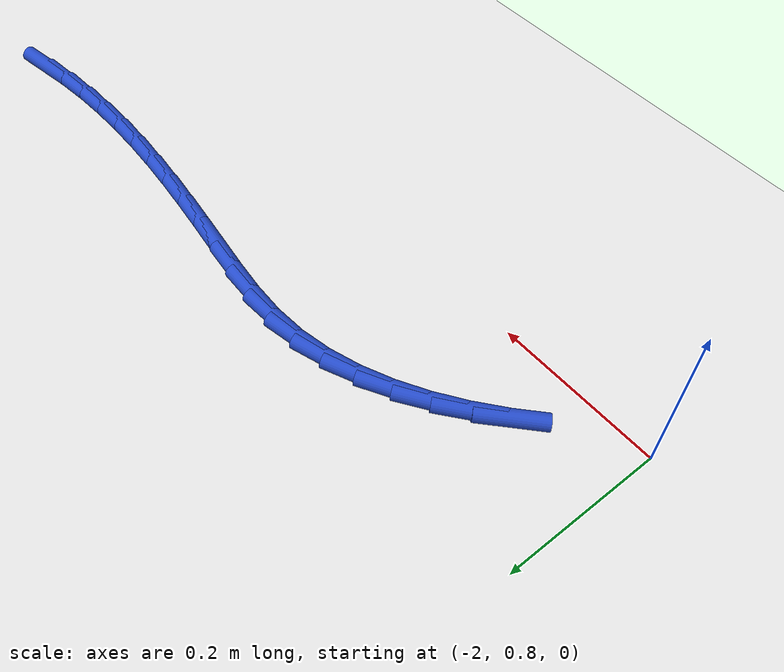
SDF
<sdf version="1.6">
 <world name="default">
  <model name="ground_plane">
   <static>1</static>
   <link name="link">
    <collision name="collision">
     <geometry><plane><normal>0 0 1</normal><size>100 100</size></plane></geometry>
     <surface><friction><ode><mu>100</mu><mu2>50</mu2></ode></friction></surface>
    </collision>
    <visual name="visual">
     <cast_shadows>0</cast_shadows>
     <geometry><plane><normal>0 0 1</normal><size>100 100</size></plane></geometry>
     <material>
      <script><uri>file://media/materials/scripts/gazebo.material</uri><name>Gazebo/WhiteGlow</name></script>
     </material>
    </visual>
   </link>
  </model>
  <model name="line">
   <link name="link_43">
    <pose>-1.098600895391843 0.976277046957294 0.01 0 1.57 0.17151627818310108</pose>
    <collision name="collision">
     <geometry><cylinder><radius>0.01</radius><length>0.08</length></cylinder></geometry>
    </collision>
    <visual name="visual">
     <material>
      <script><name>Gazebo/Blue</name><uri>file://media/materials/scripts/gazebo.material</uri></script>
     </material>
     <geometry><cylinder><radius>0.01</radius><length>0.08</length></cylinder></geometry>
    </visual>
   </link>
   <link name="link_44">
    <pose>-1.1395120227830668 0.9691904956550657 0.01 0 1.57 0.11648555332294579</pose>
    <collision name="collision">
     <geometry><cylinder><radius>0.01</radius><length>0.08</length></cylinder></geometry>
    </collision>
    <visual name="visual">
     <material>
      <script><name>Gazebo/Blue</name><uri>file://media/materials/scripts/gazebo.material</uri></script>
     </material>
     <geometry><cylinder><radius>0.01</radius><length>0.08</length></cylinder></geometry>
    </visual>
   </link>
   <link name="link_45">
    <pose>-1.1803309161928683 0.9644140610732937 0.01 0 1.57 0.06595374751297108</pose>
    <collision name="collision">
     <geometry><cylinder><radius>0.01</radius><length>0.08</length></cylinder></geometry>
    </collision>
    <visual name="visual">
     <material>
      <script><name>Gazebo/Blue</name><uri>file://media/materials/scripts/gazebo.material</uri></script>
     </material>
     <geometry><cylinder><radius>0.01</radius><length>0.08</length></cylinder></geometry>
    </visual>
   </link>
   <link name="link_46">
    <pose>-1.2210840786082213 0.9617223332439425 0.01 0 1.57 0.02044300290930315</pose>
    <collision name="collision">
     <geometry><cylinder><radius>0.01</radius><length>0.08</length></cylinder></geometry>
    </collision>
    <visual name="visual">
     <material>
      <script><name>Gazebo/Blue</name><uri>file://media/materials/scripts/gazebo.material</uri></script>
     </material>
     <geometry><cylinder><radius>0.01</radius><length>0.08</length></cylinder></geometry>
    </visual>
   </link>
   <link name="link_47">
    <pose>-1.2617980130160984 0.9608899021989759 0.01 0 1.57 -0.019688658423729716</pose>
    <collision name="collision">
     <geometry><cylinder><radius>0.01</radius><length>0.08</length></cylinder></geometry>
    </collision>
    <visual name="visual">
     <material>
      <script><name>Gazebo/Blue</name><uri>file://media/materials/scripts/gazebo.material</uri></script>
     </material>
     <geometry><cylinder><radius>0.01</radius><length>0.08</length></cylinder></geometry>
    </visual>
   </link>
   <link name="link_48">
    <pose>-1.3024992224034735 0.9616913579703584 0.01 0 1.57 -0.05422490227888521</pose>
    <collision name="collision">
     <geometry><cylinder><radius>0.01</radius><length>0.08</length></cylinder></geometry>
    </collision>
    <visual name="visual">
     <material>
      <script><name>Gazebo/Blue</name><uri>file://media/materials/scripts/gazebo.material</uri></script>
     </material>
     <geometry><cylinder><radius>0.01</radius><length>0.08</length></cylinder></geometry>
    </visual>
   </link>
   <link name="link_49">
    <pose>-1.3432142097573203 0.9639012905900541 0.01 0 1.57 -0.08306148001203718</pose>
    <collision name="collision">
     <geometry><cylinder><radius>0.01</radius><length>0.08</length></cylinder></geometry>
    </collision>
    <visual name="visual">
     <material>
      <script><name>Gazebo/Blue</name><uri>file://media/materials/scripts/gazebo.material</uri></script>
     </material>
     <geometry><cylinder><radius>0.01</radius><length>0.08</length></cylinder></geometry>
    </visual>
   </link>
   <link name="link_50">
    <pose>-1.3839694780646128 0.9672942900900277 0.01 0 1.57 -0.10617534546177798</pose>
    <collision name="collision">
     <geometry><cylinder><radius>0.01</radius><length>0.08</length></cylinder></geometry>
    </collision>
    <visual name="visual">
     <material>
      <script><name>Gazebo/Blue</name><uri>file://media/materials/scripts/gazebo.material</uri></script>
     </material>
     <geometry><cylinder><radius>0.01</radius><length>0.08</length></cylinder></geometry>
    </visual>
   </link>
   <link name="link_51">
    <pose>-1.4247915303123226 0.9716449465022425 0.01 0 1.57 -0.12359654684707527</pose>
    <collision name="collision">
     <geometry><cylinder><radius>0.01</radius><length>0.08</length></cylinder></geometry>
    </collision>
    <visual name="visual">
     <material>
      <script><name>Gazebo/Blue</name><uri>file://media/materials/scripts/gazebo.material</uri></script>
     </material>
     <geometry><cylinder><radius>0.01</radius><length>0.08</length></cylinder></geometry>
    </visual>
   </link>
   <link name="link_52">
    <pose>-1.4657068694874251 0.9767278498586636 0.01 0 1.57 -0.13538514307323052</pose>
    <collision name="collision">
     <geometry><cylinder><radius>0.01</radius><length>0.08</length></cylinder></geometry>
    </collision>
    <visual name="visual">
     <material>
      <script><name>Gazebo/Blue</name><uri>file://media/materials/scripts/gazebo.material</uri></script>
     </material>
     <geometry><cylinder><radius>0.01</radius><length>0.08</length></cylinder></geometry>
    </visual>
   </link>
   <link name="link_53">
    <pose>-1.5067419985768933 0.9823175901912551 0.01 0 1.57 -0.138193303921964</pose>
    <collision name="collision">
     <geometry><cylinder><radius>0.01</radius><length>0.08</length></cylinder></geometry>
    </collision>
    <visual name="visual">
     <material>
      <script><name>Gazebo/Blue</name><uri>file://media/materials/scripts/gazebo.material</uri></script>
     </material>
     <geometry><cylinder><radius>0.01</radius><length>0.08</length></cylinder></geometry>
    </visual>
   </link>
   <link name="link_54">
    <pose>-1.547884972023137 0.9880397461656728 0.01 0 1.57 -0.1101018982708035</pose>
    <collision name="collision">
     <geometry><cylinder><radius>0.01</radius><length>0.08</length></cylinder></geometry>
    </collision>
    <visual name="visual">
     <material>
      <script><name>Gazebo/Blue</name><uri>file://media/materials/scripts/gazebo.material</uri></script>
     </material>
     <geometry><cylinder><radius>0.01</radius><length>0.08</length></cylinder></geometry>
    </visual>
   </link>
   <link name="link_55">
    <pose>-1.5888791638228288 0.9925716117220321 0.01 0 1.57 -0.04065413062825103</pose>
    <collision name="collision">
     <geometry><cylinder><radius>0.01</radius><length>0.08</length></cylinder></geometry>
    </collision>
    <visual name="visual">
     <material>
      <script><name>Gazebo/Blue</name><uri>file://media/materials/scripts/gazebo.material</uri></script>
     </material>
     <geometry><cylinder><radius>0.01</radius><length>0.08</length></cylinder></geometry>
    </visual>
   </link>
   <link name="link_56">
    <pose>-1.6293720250139212 0.9942187213151098 0.01 0 1.57 0.0720433524379047</pose>
    <collision name="collision">
     <geometry><cylinder><radius>0.01</radius><length>0.08</length></cylinder></geometry>
    </collision>
    <visual name="visual">
     <material>
      <script><name>Gazebo/Blue</name><uri>file://media/materials/scripts/gazebo.material</uri></script>
     </material>
     <geometry><cylinder><radius>0.01</radius><length>0.08</length></cylinder></geometry>
    </visual>
   </link>
   <link name="link_57">
    <pose>-1.669021014763774 0.9913573230065676 0.01 0 1.57 0.20135852837922488</pose>
    <collision name="collision">
     <geometry><cylinder><radius>0.01</radius><length>0.08</length></cylinder></geometry>
    </collision>
    <visual name="visual">
     <material>
      <script><name>Gazebo/Blue</name><uri>file://media/materials/scripts/gazebo.material</uri></script>
     </material>
     <geometry><cylinder><radius>0.01</radius><length>0.08</length></cylinder></geometry>
    </visual>
   </link>
   <link name="link_58">
    <pose>-1.707642281819672 0.9834737654374085 0.01 0 1.57 0.32253798854013965</pose>
    <collision name="collision">
     <geometry><cylinder><radius>0.01</radius><length>0.08</length></cylinder></geometry>
    </collision>
    <visual name="visual">
     <material>
      <script><name>Gazebo/Blue</name><uri>file://media/materials/scripts/gazebo.material</uri></script>
     </material>
     <geometry><cylinder><radius>0.01</radius><length>0.08</length></cylinder></geometry>
    </visual>
   </link>
   <link name="link_59">
    <pose>-1.7451770468738184 0.9709293282842901 0.01 0 1.57 0.43294248800243706</pose>
    <collision name="collision">
     <geometry><cylinder><radius>0.01</radius><length>0.08</length></cylinder></geometry>
    </collision>
    <visual name="visual">
     <material>
      <script><name>Gazebo/Blue</name><uri>file://media/materials/scripts/gazebo.material</uri></script>
     </material>
     <geometry><cylinder><radius>0.01</radius><length>0.08</length></cylinder></geometry>
    </visual>
   </link>
   <link name="link_60">
    <pose>-1.7815699207261406 0.9541090064580302 0.01 0 1.57 0.5318912590642909</pose>
    <collision name="collision">
     <geometry><cylinder><radius>0.01</radius><length>0.08</length></cylinder></geometry>
    </collision>
    <visual name="visual">
     <material>
      <script><name>Gazebo/Blue</name><uri>file://media/materials/scripts/gazebo.material</uri></script>
     </material>
     <geometry><cylinder><radius>0.01</radius><length>0.08</length></cylinder></geometry>
    </visual>
   </link>
   <link name="link_61">
    <pose>-1.8167655141765653 0.9333977948694459 0.01 0 1.57 0.6197061858737413</pose>
    <collision name="collision">
     <geometry><cylinder><radius>0.01</radius><length>0.08</length></cylinder></geometry>
    </collision>
    <visual name="visual">
     <material>
      <script><name>Gazebo/Blue</name><uri>file://media/materials/scripts/gazebo.material</uri></script>
     </material>
     <geometry><cylinder><radius>0.01</radius><length>0.08</length></cylinder></geometry>
    </visual>
   </link>
   <link name="link_62">
    <pose>-1.8507084380250185 0.9091806884293553 0.01 0 1.57 0.6973058346139636</pose>
    <collision name="collision">
     <geometry><cylinder><radius>0.01</radius><length>0.08</length></cylinder></geometry>
    </collision>
    <visual name="visual">
     <material>
      <script><name>Gazebo/Blue</name><uri>file://media/materials/scripts/gazebo.material</uri></script>
     </material>
     <geometry><cylinder><radius>0.01</radius><length>0.08</length></cylinder></geometry>
    </visual>
   </link>
   <link name="link_63">
    <pose>-1.8833433030714264 0.8818426820485752 0.01 0 1.57 0.7658799116931142</pose>
    <collision name="collision">
     <geometry><cylinder><radius>0.01</radius><length>0.08</length></cylinder></geometry>
    </collision>
    <visual name="visual">
     <material>
      <script><name>Gazebo/Blue</name><uri>file://media/materials/scripts/gazebo.material</uri></script>
     </material>
     <geometry><cylinder><radius>0.01</radius><length>0.08</length></cylinder></geometry>
    </visual>
   </link>
  </model>
 </world>
</sdf>
